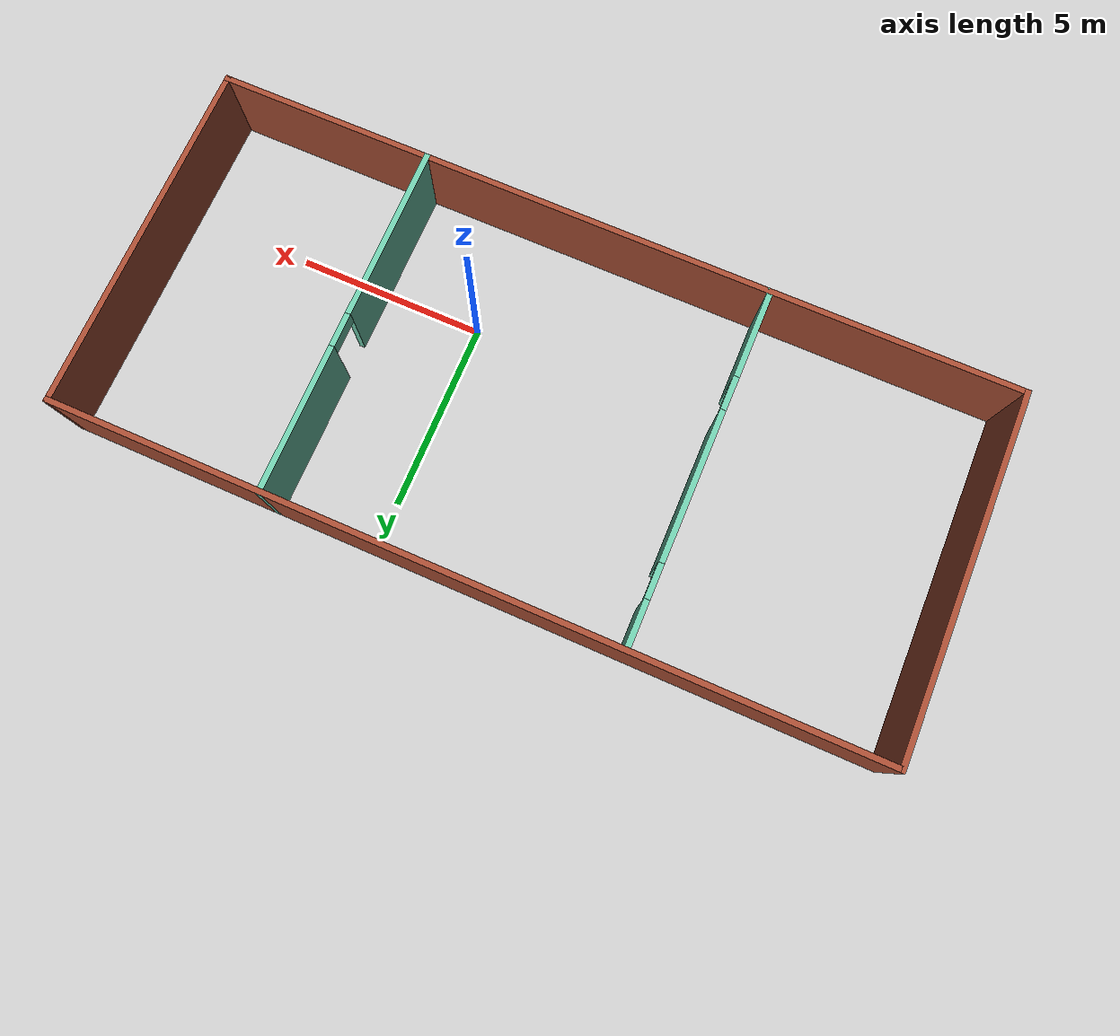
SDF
<?xml version='1.0'?>
<sdf version='1.6'>
  <model name='model'>
    <pose frame=''>-2.42313 1.65065 0 0 -0 0</pose>
    <link name='Wall_1'>
      <collision name='Wall_1_Collision'>
        <geometry>
          <box>
            <size>9.5 0.15 2.5</size>
          </box>
        </geometry>
        <pose frame=''>0 0 1.25 0 -0 0</pose>
      </collision>
      <visual name='Wall_1_Visual'>
        <pose frame=''>0 0 1.25 0 -0 0</pose>
        <geometry>
          <box>
            <size>9.5 0.15 2.5</size>
          </box>
        </geometry>
        <material>
          <script>
            <uri>file://media/materials/scripts/gazebo.material</uri>
            <name>Gazebo/Bricks</name>
          </script>
          <ambient>1 0.764706 0.305882 1</ambient>
        </material>
        <meta>
          <layer>0</layer>
        </meta>
      </visual>
      <pose frame=''>-10.675 0 0 0 0 -1.5708</pose>
    </link>
    <link name='Wall_2'>
      <collision name='Wall_2_Collision'>
        <geometry>
          <box>
            <size>21.5 0.15 2.5</size>
          </box>
        </geometry>
        <pose frame=''>0 0 1.25 0 -0 0</pose>
      </collision>
      <visual name='Wall_2_Visual'>
        <pose frame=''>0 0 1.25 0 -0 0</pose>
        <geometry>
          <box>
            <size>21.5 0.15 2.5</size>
          </box>
        </geometry>
        <material>
          <script>
            <uri>file://media/materials/scripts/gazebo.material</uri>
            <name>Gazebo/Bricks</name>
          </script>
          <ambient>1 0.764706 0.305882 1</ambient>
        </material>
        <meta>
          <layer>0</layer>
        </meta>
      </visual>
      <pose frame=''>0 -4.675 0 0 -0 0</pose>
    </link>
    <link name='Wall_3'>
      <collision name='Wall_3_Collision'>
        <geometry>
          <box>
            <size>9.5 0.15 2.5</size>
          </box>
        </geometry>
        <pose frame=''>0 0 1.25 0 -0 0</pose>
      </collision>
      <visual name='Wall_3_Visual'>
        <pose frame=''>0 0 1.25 0 -0 0</pose>
        <geometry>
          <box>
            <size>9.5 0.15 2.5</size>
          </box>
        </geometry>
        <material>
          <script>
            <uri>file://media/materials/scripts/gazebo.material</uri>
            <name>Gazebo/Bricks</name>
          </script>
          <ambient>1 0.764706 0.305882 1</ambient>
        </material>
        <meta>
          <layer>0</layer>
        </meta>
      </visual>
      <pose frame=''>10.675 0 0 0 -0 1.5708</pose>
    </link>
    <link name='Wall_4'>
      <collision name='Wall_4_Collision'>
        <geometry>
          <box>
            <size>21.5 0.15 2.5</size>
          </box>
        </geometry>
        <pose frame=''>0 0 1.25 0 -0 0</pose>
      </collision>
      <visual name='Wall_4_Visual'>
        <pose frame=''>0 0 1.25 0 -0 0</pose>
        <geometry>
          <box>
            <size>21.5 0.15 2.5</size>
          </box>
        </geometry>
        <material>
          <script>
            <uri>file://media/materials/scripts/gazebo.material</uri>
            <name>Gazebo/Bricks</name>
          </script>
          <ambient>1 0.764706 0.305882 1</ambient>
        </material>
        <meta>
          <layer>0</layer>
        </meta>
      </visual>
      <pose frame=''>0 4.675 0 0 -0 3.14159</pose>
    </link>
    <link name='Wall_6'>
      <pose frame=''>-4.16693 0 0 0 0 -1.5708</pose>
      <visual name='Wall_6_Visual_0'>
        <pose frame=''>-4.09321 0 1.25 0 -0 0</pose>
        <geometry>
          <box>
            <size>1.31358 0.15 2.5</size>
          </box>
        </geometry>
        <material>
          <script>
            <uri>file://media/materials/scripts/gazebo.material</uri>
            <name>Gazebo/Grey</name>
          </script>
          <ambient>0.435294 0.796078 0.67451 1</ambient>
        </material>
        <meta>
          <layer>0</layer>
        </meta>
      </visual>
      <collision name='Wall_6_Collision_0'>
        <geometry>
          <box>
            <size>1.31358 0.15 2.5</size>
          </box>
        </geometry>
        <pose frame=''>-4.09321 0 1.25 0 -0 0</pose>
      </collision>
      <visual name='Wall_6_Visual_1'>
        <pose frame=''>-0.559085 0 1.25 0 -0 0</pose>
        <geometry>
          <box>
            <size>3.95467 0.15 2.5</size>
          </box>
        </geometry>
        <material>
          <script>
            <uri>file://media/materials/scripts/gazebo.material</uri>
            <name>Gazebo/Grey</name>
          </script>
          <ambient>0.435294 0.796078 0.67451 1</ambient>
        </material>
        <meta>
          <layer>0</layer>
        </meta>
      </visual>
      <collision name='Wall_6_Collision_1'>
        <geometry>
          <box>
            <size>3.95467 0.15 2.5</size>
          </box>
        </geometry>
        <pose frame=''>-0.559085 0 1.25 0 -0 0</pose>
      </collision>
      <visual name='Wall_6_Visual_2'>
        <pose frame=''>3.53412 0 1.25 0 -0 0</pose>
        <geometry>
          <box>
            <size>2.43175 0.15 2.5</size>
          </box>
        </geometry>
        <material>
          <script>
            <uri>file://media/materials/scripts/gazebo.material</uri>
            <name>Gazebo/Grey</name>
          </script>
          <ambient>0.435294 0.796078 0.67451 1</ambient>
        </material>
        <meta>
          <layer>0</layer>
        </meta>
      </visual>
      <collision name='Wall_6_Collision_2'>
        <geometry>
          <box>
            <size>2.43175 0.15 2.5</size>
          </box>
        </geometry>
        <pose frame=''>3.53412 0 1.25 0 -0 0</pose>
      </collision>
      <visual name='Wall_6_Visual_3'>
        <pose frame=''>-2.98642 0 2.25 0 -0 0</pose>
        <geometry>
          <box>
            <size>0.9 0.15 0.5</size>
          </box>
        </geometry>
        <material>
          <script>
            <uri>file://media/materials/scripts/gazebo.material</uri>
            <name>Gazebo/Grey</name>
          </script>
          <ambient>0.435294 0.796078 0.67451 1</ambient>
        </material>
        <meta>
          <layer>0</layer>
        </meta>
      </visual>
      <collision name='Wall_6_Collision_3'>
        <geometry>
          <box>
            <size>0.9 0.15 0.5</size>
          </box>
        </geometry>
        <pose frame=''>-2.98642 0 2.25 0 -0 0</pose>
      </collision>
      <visual name='Wall_6_Visual_4'>
        <pose frame=''>1.86825 0 2.25 0 -0 0</pose>
        <geometry>
          <box>
            <size>0.9 0.15 0.5</size>
          </box>
        </geometry>
        <material>
          <script>
            <uri>file://media/materials/scripts/gazebo.material</uri>
            <name>Gazebo/Grey</name>
          </script>
          <ambient>0.435294 0.796078 0.67451 1</ambient>
        </material>
        <meta>
          <layer>0</layer>
        </meta>
      </visual>
      <collision name='Wall_6_Collision_4'>
        <geometry>
          <box>
            <size>0.9 0.15 0.5</size>
          </box>
        </geometry>
        <pose frame=''>1.86825 0 2.25 0 -0 0</pose>
      </collision>
    </link>
    <link name='Wall_8'>
      <pose frame=''>5.04991 0 0 0 0 -1.5708</pose>
      <visual name='Wall_8_Visual_0'>
        <pose frame=''>-2.77401 0 1.25 0 -0 0</pose>
        <geometry>
          <box>
            <size>3.95199 0.15 2.5</size>
          </box>
        </geometry>
        <material>
          <script>
            <uri>file://media/materials/scripts/gazebo.material</uri>
            <name>Gazebo/Grey</name>
          </script>
          <ambient>0.435294 0.796078 0.67451 1</ambient>
        </material>
        <meta>
          <layer>0</layer>
        </meta>
      </visual>
      <collision name='Wall_8_Collision_0'>
        <geometry>
          <box>
            <size>3.95199 0.15 2.5</size>
          </box>
        </geometry>
        <pose frame=''>-2.77401 0 1.25 0 -0 0</pose>
      </collision>
      <visual name='Wall_8_Visual_1'>
        <pose frame=''>2.42599 0 1.25 0 -0 0</pose>
        <geometry>
          <box>
            <size>4.64801 0.15 2.5</size>
          </box>
        </geometry>
        <material>
          <script>
            <uri>file://media/materials/scripts/gazebo.material</uri>
            <name>Gazebo/Grey</name>
          </script>
          <ambient>0.435294 0.796078 0.67451 1</ambient>
        </material>
        <meta>
          <layer>0</layer>
        </meta>
      </visual>
      <collision name='Wall_8_Collision_1'>
        <geometry>
          <box>
            <size>4.64801 0.15 2.5</size>
          </box>
        </geometry>
        <pose frame=''>2.42599 0 1.25 0 -0 0</pose>
      </collision>
      <visual name='Wall_8_Visual_2'>
        <pose frame=''>-0.348012 0 2.25 0 -0 0</pose>
        <geometry>
          <box>
            <size>0.9 0.15 0.5</size>
          </box>
        </geometry>
        <material>
          <script>
            <uri>file://media/materials/scripts/gazebo.material</uri>
            <name>Gazebo/Grey</name>
          </script>
          <ambient>0.435294 0.796078 0.67451 1</ambient>
        </material>
        <meta>
          <layer>0</layer>
        </meta>
      </visual>
      <collision name='Wall_8_Collision_2'>
        <geometry>
          <box>
            <size>0.9 0.15 0.5</size>
          </box>
        </geometry>
        <pose frame=''>-0.348012 0 2.25 0 -0 0</pose>
      </collision>
    </link>
    <static>1</static>
  </model>
</sdf>
